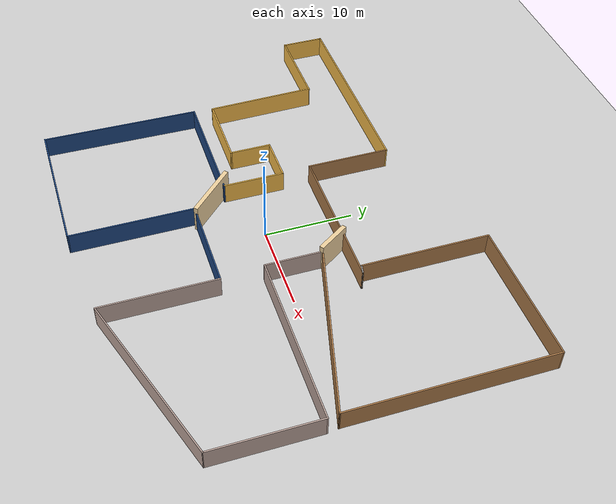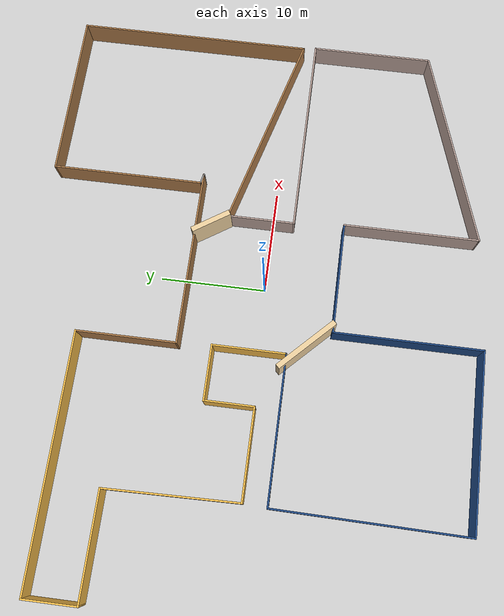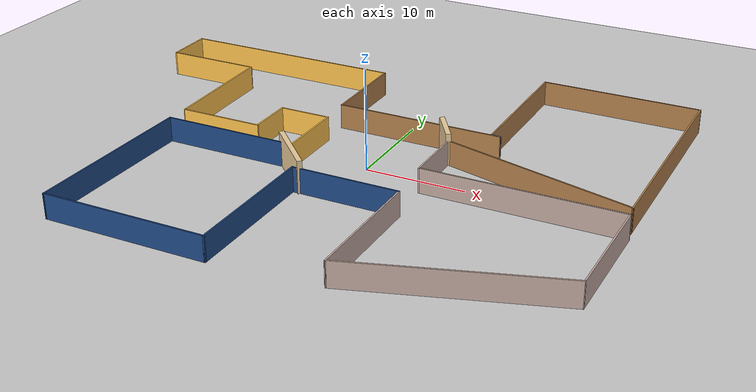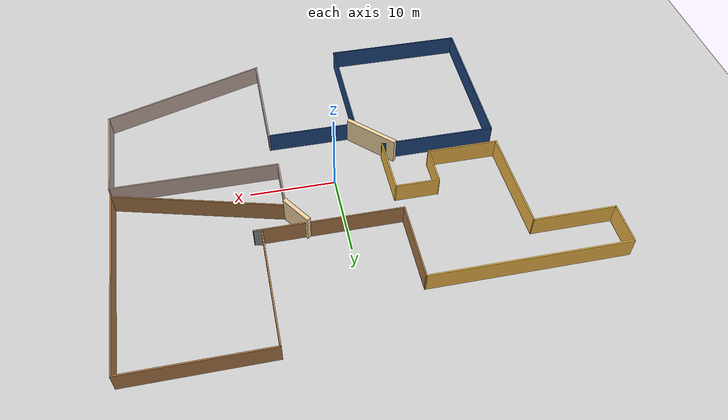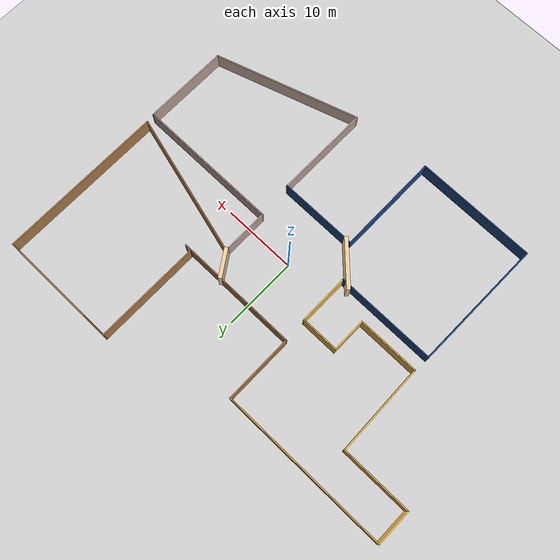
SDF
<sdf version="1.6">
 <world name="default">
  <light name="sun" type="directional">
   <pose>0 0 10 0 -0 0</pose>
   <diffuse>0.8 0.8 0.8 1</diffuse>
   <specular>0.2 0.2 0.2 1</specular>
   <attenuation>
    <range>1000</range>
    <constant>0.9</constant>
    <linear>0.01</linear>
    <quadratic>0.001</quadratic>
   </attenuation>
   <direction>-0.5 0.1 -0.9</direction>
  </light>
  <model name="ground_plane">
   <static>1</static>
   <link name="link">
    <collision name="collision">
     <geometry><plane><normal>0 0 1</normal><size>100 100</size></plane></geometry>
     <surface>
      <contact><collide_bitmask>65535</collide_bitmask></contact>
      <friction><ode><mu>100</mu><mu2>50</mu2></ode></friction>
     </surface>
    </collision>
    <visual name="visual">
     <cast_shadows>0</cast_shadows>
     <geometry><plane><normal>0 0 1</normal><size>100 100</size></plane></geometry>
     <material>
      <script><uri>file://media/materials/scripts/gazebo.material</uri><name>Gazebo/Grey</name></script>
     </material>
    </visual>
   </link>
  </model>
  <gravity>0 0 -9.8</gravity>
  <magnetic_field>6e-06 2.3e-05 -4.2e-05</magnetic_field>
  <atmosphere type="adiabatic"/>
  <physics name="default_physics" default="0" type="ode">
   <max_step_size>0.001</max_step_size>
   <real_time_factor>1</real_time_factor>
   <real_time_update_rate>1000</real_time_update_rate>
  </physics>
  <scene><ambient>0.4 0.4 0.4 1</ambient><background>0.7 0.7 0.7 1</background><shadows>1</shadows></scene>
  <spherical_coordinates>
   <surface_model>EARTH_WGS84</surface_model>
   <latitude_deg>0</latitude_deg>
   <longitude_deg>0</longitude_deg>
   <elevation>0</elevation>
   <heading_deg>0</heading_deg>
  </spherical_coordinates>
  <model name="uav_indoor_room">
   <pose>-1.95069 0.579413 0 0 -0 0</pose>
   <link name="Wall_0">
    <collision name="Wall_0_Collision">
     <geometry><box><size>17 0.15 2.5</size></box></geometry>
     <pose>0 0 1.25 0 -0 0</pose>
    </collision>
    <visual name="Wall_0_Visual">
     <pose>0 0 1.25 0 -0 0</pose>
     <geometry><box><size>17 0.15 2.5</size></box></geometry>
     <material>
      <script><uri>file://media/materials/scripts/gazebo.material</uri><name>Gazebo/Wood</name></script>
      <ambient>1 1 1 1</ambient>
     </material>
     <meta><layer>0</layer></meta>
    </visual>
    <pose>3.84926 6.70787 0 0 -0 3.14159</pose>
   </link>
   <link name="Wall_1">
    <collision name="Wall_1_Collision">
     <geometry><box><size>9.5 0.15 2.5</size></box></geometry>
     <pose>0 0 1.25 0 -0 0</pose>
    </collision>
    <visual name="Wall_1_Visual">
     <pose>0 0 1.25 0 -0 0</pose>
     <geometry><box><size>9.5 0.15 2.5</size></box></geometry>
     <material>
      <script><uri>file://media/materials/scripts/gazebo.material</uri><name>Gazebo/Wood</name></script>
      <ambient>1 1 1 1</ambient>
     </material>
     <meta><layer>0</layer></meta>
    </visual>
    <pose>-4.57573 11.3829 0 0 -0 1.5708</pose>
   </link>
   <link name="Wall_10">
    <collision name="Wall_10_Collision">
     <geometry><box><size>13.75 0.15 2.5</size></box></geometry>
     <pose>0 0 1.25 0 -0 0</pose>
    </collision>
    <visual name="Wall_10_Visual">
     <pose>0 0 1.25 0 -0 0</pose>
     <geometry><box><size>13.75 0.15 2.5</size></box></geometry>
     <material>
      <script><uri>file://media/materials/scripts/gazebo.material</uri><name>Gazebo/Grey</name></script>
      <ambient>0.12549 0.290196 0.529412 1</ambient>
     </material>
     <meta><layer>0</layer></meta>
    </visual>
    <pose>-11.1757 -3.39213 0 0 -0 3.14159</pose>
   </link>
   <link name="Wall_11">
    <collision name="Wall_11_Collision">
     <geometry><box><size>18.0018 0.15 2.5</size></box></geometry>
     <pose>0 0 1.25 0 -0 0</pose>
    </collision>
    <visual name="Wall_11_Visual">
     <pose>0 0 1.25 0 -0 0</pose>
     <geometry><box><size>18.0018 0.15 2.5</size></box></geometry>
     <material>
      <script><uri>file://media/materials/scripts/gazebo.material</uri><name>Gazebo/Grey</name></script>
      <ambient>0.12549 0.290196 0.529412 1</ambient>
     </material>
     <meta><layer>0</layer></meta>
    </visual>
    <pose>-18.1007 -12.3171 0 0 -0 -1.5848</pose>
   </link>
   <link name="Wall_12">
    <collision name="Wall_12_Collision">
     <geometry><box><size>16.5 0.15 2.5</size></box></geometry>
     <pose>0 0 1.25 0 -0 0</pose>
    </collision>
    <visual name="Wall_12_Visual">
     <pose>0 0 1.25 0 -0 0</pose>
     <geometry><box><size>16.5 0.15 2.5</size></box></geometry>
     <material>
      <script><uri>file://media/materials/scripts/gazebo.material</uri><name>Gazebo/Grey</name></script>
      <ambient>0.12549 0.290196 0.529412 1</ambient>
     </material>
     <meta><layer>0</layer></meta>
    </visual>
    <pose>-10.0507 -21.2421 0 0 -0 0</pose>
   </link>
   <link name="Wall_13">
    <collision name="Wall_13_Collision">
     <geometry><box><size>14 0.15 2.5</size></box></geometry>
     <pose>0 0 1.25 0 -0 0</pose>
    </collision>
    <visual name="Wall_13_Visual">
     <pose>0 0 1.25 0 -0 0</pose>
     <geometry><box><size>14 0.15 2.5</size></box></geometry>
     <material>
      <script><uri>file://media/materials/scripts/gazebo.material</uri><name>Gazebo/Grey</name></script>
      <ambient>0.12549 0.290196 0.529412 1</ambient>
     </material>
     <meta><layer>0</layer></meta>
    </visual>
    <pose>-1.87573 -14.3171 0 0 -0 1.5708</pose>
   </link>
   <link name="Wall_14">
    <collision name="Wall_14_Collision">
     <geometry><box><size>10.75 0.15 2.5</size></box></geometry>
     <pose>0 0 1.25 0 -0 0</pose>
    </collision>
    <visual name="Wall_14_Visual">
     <pose>0 0 1.25 0 -0 0</pose>
     <geometry><box><size>10.75 0.15 2.5</size></box></geometry>
     <material>
      <script><uri>file://media/materials/scripts/gazebo.material</uri><name>Gazebo/Grey</name></script>
      <ambient>0.12549 0.290196 0.529412 1</ambient>
     </material>
     <meta><layer>0</layer></meta>
    </visual>
    <pose>3.42427 -7.39213 0 0 -0 0</pose>
   </link>
   <link name="Wall_15">
    <collision name="Wall_15_Collision">
     <geometry><box><size>13 0.15 2.5</size></box></geometry>
     <pose>0 0 1.25 0 -0 0</pose>
    </collision>
    <visual name="Wall_15_Visual">
     <pose>0 0 1.25 0 -0 0</pose>
     <geometry><box><size>13 0.15 2.5</size></box></geometry>
     <material>
      <script><uri>file://media/materials/scripts/gazebo.material</uri><name>Gazebo/Grey</name></script>
      <ambient>0.760784 0.662745 0.627451 1</ambient>
     </material>
     <meta><layer>0</layer></meta>
    </visual>
    <pose>8.72427 -13.8171 0 0 -0 -1.5708</pose>
   </link>
   <link name="Wall_16">
    <collision name="Wall_16_Collision">
     <geometry><box><size>20.0323 0.15 2.5</size></box></geometry>
     <pose>0 0 1.25 0 -0 0</pose>
    </collision>
    <visual name="Wall_16_Visual">
     <pose>0 0 1.25 0 -0 0</pose>
     <geometry><box><size>20.0323 0.15 2.5</size></box></geometry>
     <material>
      <script><uri>file://media/materials/scripts/gazebo.material</uri><name>Gazebo/Grey</name></script>
      <ambient>0.760784 0.662745 0.627451 1</ambient>
     </material>
     <meta><layer>0</layer></meta>
    </visual>
    <pose>18.1903 -17.2057 0 0 -0 0.310401</pose>
   </link>
   <link name="Wall_17">
    <collision name="Wall_17_Collision">
     <geometry><box><size>11.75 0.15 2.5</size></box></geometry>
     <pose>0 0 1.25 0 -0 0</pose>
    </collision>
    <visual name="Wall_17_Visual">
     <pose>0 0 1.25 0 -0 0</pose>
     <geometry><box><size>11.75 0.15 2.5</size></box></geometry>
     <material>
      <script><uri>file://media/materials/scripts/gazebo.material</uri><name>Gazebo/Grey</name></script>
      <ambient>0.760784 0.662745 0.627451 1</ambient>
     </material>
     <meta><layer>0</layer></meta>
    </visual>
    <pose>27.6564 -8.36927 0 0 -0 1.5708</pose>
   </link>
   <link name="Wall_18">
    <collision name="Wall_18_Collision">
     <geometry><box><size>19.5 0.15 2.5</size></box></geometry>
     <pose>0 0 1.25 0 -0 0</pose>
    </collision>
    <visual name="Wall_18_Visual">
     <pose>0 0 1.25 0 -0 0</pose>
     <geometry><box><size>19.5 0.15 2.5</size></box></geometry>
     <material>
      <script><uri>file://media/materials/scripts/gazebo.material</uri><name>Gazebo/Grey</name></script>
      <ambient>0.760784 0.662745 0.627451 1</ambient>
     </material>
     <meta><layer>0</layer></meta>
    </visual>
    <pose>17.9814 -2.56927 0 0 -0 3.14159</pose>
   </link>
   <link name="Wall_19">
    <collision name="Wall_19_Collision">
     <geometry><box><size>6.5 0.15 2.5</size></box></geometry>
     <pose>0 0 1.25 0 -0 0</pose>
    </collision>
    <visual name="Wall_19_Visual">
     <pose>0 0 1.25 0 -0 0</pose>
     <geometry><box><size>6.5 0.15 2.5</size></box></geometry>
     <material>
      <script><uri>file://media/materials/scripts/gazebo.material</uri><name>Gazebo/Grey</name></script>
      <ambient>0.760784 0.662745 0.627451 1</ambient>
     </material>
     <meta><layer>0</layer></meta>
    </visual>
    <pose>8.30641 0.605726 0 0 -0 1.5708</pose>
   </link>
   <link name="Wall_2">
    <collision name="Wall_2_Collision">
     <geometry><box><size>23.25 0.15 2.5</size></box></geometry>
     <pose>0 0 1.25 0 -0 0</pose>
    </collision>
    <visual name="Wall_2_Visual">
     <pose>0 0 1.25 0 -0 0</pose>
     <geometry><box><size>23.25 0.15 2.5</size></box></geometry>
     <material>
      <script><uri>file://media/materials/scripts/gazebo.material</uri><name>Gazebo/Grey</name></script>
      <ambient>1 0.764706 0.305882 1</ambient>
     </material>
     <meta><layer>0</layer></meta>
    </visual>
    <pose>-16.1257 16.0579 0 0 -0 3.14159</pose>
   </link>
   <link name="Wall_20">
    <collision name="Wall_20_Collision">
     <geometry><box><size>20 0.15 2.5</size></box></geometry>
     <pose>0 0 1.25 0 -0 0</pose>
    </collision>
    <visual name="Wall_20_Visual">
     <pose>0 0 1.25 0 -0 0</pose>
     <geometry><box><size>20 0.15 2.5</size></box></geometry>
     <material>
      <script><uri>file://media/materials/scripts/gazebo.material</uri><name>Gazebo/Wood</name></script>
      <ambient>1 1 1 1</ambient>
     </material>
     <meta><layer>0</layer></meta>
    </visual>
    <pose>17.8932 1.21195 0 0 -0 -0.261799</pose>
   </link>
   <link name="Wall_21">
    <collision name="Wall_21_Collision">
     <geometry><box><size>22.75 0.15 2.5</size></box></geometry>
     <pose>0 0 1.25 0 -0 0</pose>
    </collision>
    <visual name="Wall_21_Visual">
     <pose>0 0 1.25 0 -0 0</pose>
     <geometry><box><size>22.75 0.15 2.5</size></box></geometry>
     <material>
      <script><uri>file://media/materials/scripts/gazebo.material</uri><name>Gazebo/Wood</name></script>
      <ambient>1 1 1 1</ambient>
     </material>
     <meta><layer>0</layer></meta>
    </visual>
    <pose>27.48 9.94317 0 0 -0 1.5708</pose>
   </link>
   <link name="Wall_22">
    <collision name="Wall_22_Collision">
     <geometry><box><size>16.25 0.15 2.5</size></box></geometry>
     <pose>0 0 1.25 0 -0 0</pose>
    </collision>
    <visual name="Wall_22_Visual">
     <pose>0 0 1.25 0 -0 0</pose>
     <geometry><box><size>16.25 0.15 2.5</size></box></geometry>
     <material>
      <script><uri>file://media/materials/scripts/gazebo.material</uri><name>Gazebo/Wood</name></script>
      <ambient>1 1 1 1</ambient>
     </material>
     <meta><layer>0</layer></meta>
    </visual>
    <pose>19.43 21.2432 0 0 -0 3.14159</pose>
   </link>
   <link name="Wall_23">
    <collision name="Wall_23_Collision">
     <geometry><box><size>14.5 0.15 2.5</size></box></geometry>
     <pose>0 0 1.25 0 -0 0</pose>
    </collision>
    <visual name="Wall_23_Visual">
     <pose>0 0 1.25 0 -0 0</pose>
     <geometry><box><size>14.5 0.15 2.5</size></box></geometry>
     <material>
      <script><uri>file://media/materials/scripts/gazebo.material</uri><name>Gazebo/Wood</name></script>
      <ambient>1 1 1 1</ambient>
     </material>
     <meta><layer>0</layer></meta>
    </visual>
    <pose>11.38 14.0682 0 0 -0 -1.5708</pose>
   </link>
   <link name="Wall_24">
    <collision name="Wall_24_Collision">
     <geometry><box><size>1.06322 0.15 2.5</size></box></geometry>
     <pose>0 0 1.25 0 -0 0</pose>
    </collision>
    <visual name="Wall_24_Visual">
     <pose>0 0 1.25 0 -0 0</pose>
     <geometry><box><size>1.06322 0.15 2.5</size></box></geometry>
     <material>
      <script><uri>file://media/materials/scripts/gazebo.material</uri><name>Gazebo/Grey</name></script>
      <ambient>1 1 1 1</ambient>
     </material>
     <meta><layer>0</layer></meta>
    </visual>
    <pose>11.8272 6.80052 0 0 -0 -0.204321</pose>
   </link>
   <link name="Wall_3">
    <collision name="Wall_3_Collision">
     <geometry><box><size>5 0.15 2.5</size></box></geometry>
     <pose>0 0 1.25 0 -0 0</pose>
    </collision>
    <visual name="Wall_3_Visual">
     <pose>0 0 1.25 0 -0 0</pose>
     <geometry><box><size>5 0.15 2.5</size></box></geometry>
     <material>
      <script><uri>file://media/materials/scripts/gazebo.material</uri><name>Gazebo/Grey</name></script>
      <ambient>1 0.764706 0.305882 1</ambient>
     </material>
     <meta><layer>0</layer></meta>
    </visual>
    <pose>-27.6757 13.6329 0 0 -0 -1.5708</pose>
   </link>
   <link name="Wall_4">
    <collision name="Wall_4_Collision">
     <geometry><box><size>9.75 0.15 2.5</size></box></geometry>
     <pose>0 0 1.25 0 -0 0</pose>
    </collision>
    <visual name="Wall_4_Visual">
     <pose>0 0 1.25 0 -0 0</pose>
     <geometry><box><size>9.75 0.15 2.5</size></box></geometry>
     <material>
      <script><uri>file://media/materials/scripts/gazebo.material</uri><name>Gazebo/Grey</name></script>
      <ambient>1 0.764706 0.305882 1</ambient>
     </material>
     <meta><layer>0</layer></meta>
    </visual>
    <pose>-22.8757 11.2079 0 0 -0 0</pose>
   </link>
   <link name="Wall_5">
    <collision name="Wall_5_Collision">
     <geometry><box><size>12.5025 0.15 2.5</size></box></geometry>
     <pose>0 0 1.25 0 -0 0</pose>
    </collision>
    <visual name="Wall_5_Visual">
     <pose>0 0 1.25 0 -0 0</pose>
     <geometry><box><size>12.5025 0.15 2.5</size></box></geometry>
     <material>
      <script><uri>file://media/materials/scripts/gazebo.material</uri><name>Gazebo/Grey</name></script>
      <ambient>1 0.764706 0.305882 1</ambient>
     </material>
     <meta><layer>0</layer></meta>
    </visual>
    <pose>-17.9507 5.03287 0 0 -0 -1.55056</pose>
   </link>
   <link name="Wall_6">
    <collision name="Wall_6_Collision">
     <geometry><box><size>8.5 0.15 2.5</size></box></geometry>
     <pose>0 0 1.25 0 -0 0</pose>
    </collision>
    <visual name="Wall_6_Visual">
     <pose>0 0 1.25 0 -0 0</pose>
     <geometry><box><size>8.5 0.15 2.5</size></box></geometry>
     <material>
      <script><uri>file://media/materials/scripts/gazebo.material</uri><name>Gazebo/Grey</name></script>
      <ambient>1 0.764706 0.305882 1</ambient>
     </material>
     <meta><layer>0</layer></meta>
    </visual>
    <pose>-13.6507 -1.14213 0 0 -0 0</pose>
   </link>
   <link name="Wall_7">
    <collision name="Wall_7_Collision">
     <geometry><box><size>4.75 0.15 2.5</size></box></geometry>
     <pose>0 0 1.25 0 -0 0</pose>
    </collision>
    <visual name="Wall_7_Visual">
     <pose>0 0 1.25 0 -0 0</pose>
     <geometry><box><size>4.75 0.15 2.5</size></box></geometry>
     <material>
      <script><uri>file://media/materials/scripts/gazebo.material</uri><name>Gazebo/Grey</name></script>
      <ambient>1 0.764706 0.305882 1</ambient>
     </material>
     <meta><layer>0</layer></meta>
    </visual>
    <pose>-9.47574 1.15787 0 0 -0 1.5708</pose>
   </link>
   <link name="Wall_8">
    <collision name="Wall_8_Collision">
     <geometry><box><size>5.25 0.15 2.5</size></box></geometry>
     <pose>0 0 1.25 0 -0 0</pose>
    </collision>
    <visual name="Wall_8_Visual">
     <pose>0 0 1.25 0 -0 0</pose>
     <geometry><box><size>5.25 0.15 2.5</size></box></geometry>
     <material>
      <script><uri>file://media/materials/scripts/gazebo.material</uri><name>Gazebo/Grey</name></script>
      <ambient>1 0.764706 0.305882 1</ambient>
     </material>
     <meta><layer>0</layer></meta>
    </visual>
    <pose>-6.92574 3.45787 0 0 -0 0</pose>
   </link>
   <link name="Wall_9">
    <collision name="Wall_9_Collision">
     <geometry><box><size>7 0.15 2.5</size></box></geometry>
     <pose>0 0 1.25 0 -0 0</pose>
    </collision>
    <visual name="Wall_9_Visual">
     <pose>0 0 1.25 0 -0 0</pose>
     <geometry><box><size>7 0.15 2.5</size></box></geometry>
     <material>
      <script><uri>file://media/materials/scripts/gazebo.material</uri><name>Gazebo/Grey</name></script>
      <ambient>1 0.764706 0.305882 1</ambient>
     </material>
     <meta><layer>0</layer></meta>
    </visual>
    <pose>-4.37573 0.032873 0 0 -0 -1.5708</pose>
   </link>
   <static>1</static>
  </model>
  <model name="uav_indoor_room_of_3bhk">
   <pose>-5.3805 -4.5125 0 0 -0 0</pose>
   <link name="Wall_1">
    <collision name="Wall_1_Collision">
     <geometry><box><size>6.67304 0.5 3.25</size></box></geometry>
     <pose>0 0 1.625 0 -0 0</pose>
    </collision>
    <visual name="Wall_1_Visual">
     <pose>0 0 1.625 0 -0 0</pose>
     <geometry><box><size>6.67304 0.5 3.25</size></box></geometry>
     <material>
      <script><uri>file://media/materials/scripts/gazebo.material</uri><name>Gazebo/Grey</name></script>
      <ambient>0.921569 0.807843 0.615686 1</ambient>
     </material>
     <meta><layer>0</layer></meta>
    </visual>
    <pose>0 -0 0 0 -0 -0.785398</pose>
   </link>
   <static>1</static>
  </model>
  <model name="uav_indoor_room_of_2bhk">
   <pose>5.3475 5.8155 0 0 -0 0</pose>
   <link name="Wall_12">
    <collision name="Wall_12_Collision">
     <geometry><box><size>3.97057 0.5 3.25</size></box></geometry>
     <pose>0 0 1.625 0 -0 0</pose>
    </collision>
    <visual name="Wall_12_Visual">
     <pose>0 0 1.625 0 -0 0</pose>
     <geometry><box><size>3.97057 0.5 3.25</size></box></geometry>
     <material>
      <script><uri>file://media/materials/scripts/gazebo.material</uri><name>Gazebo/Grey</name></script>
      <ambient>0.921569 0.807843 0.615686 1</ambient>
     </material>
     <meta><layer>0</layer></meta>
    </visual>
    <pose>0 0 0 0 -0 -0.989746</pose>
   </link>
   <static>1</static>
  </model>
 </world>
</sdf>
